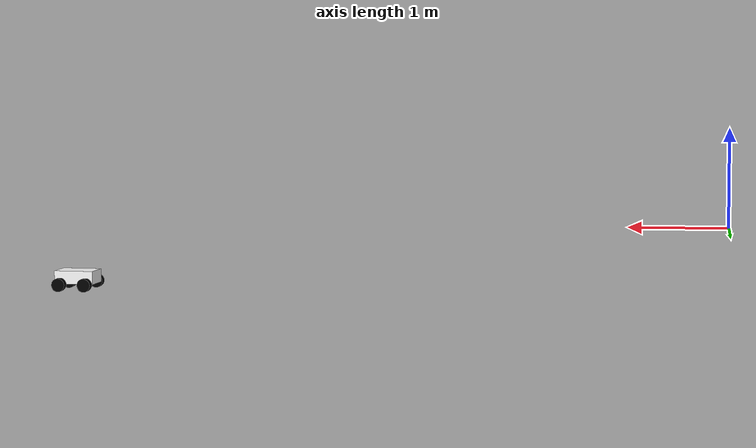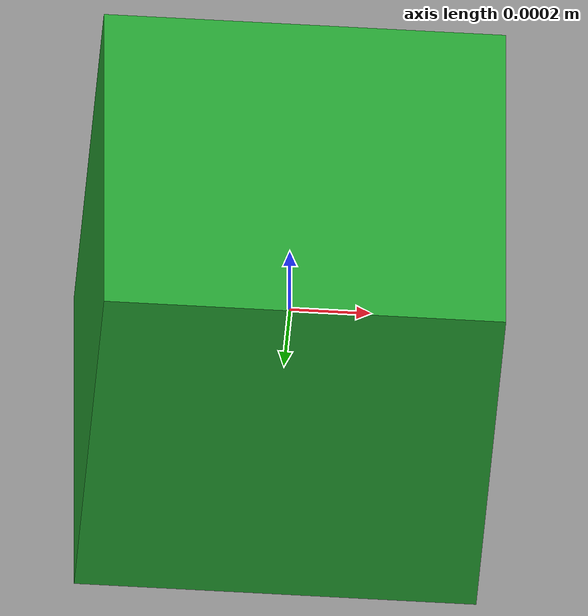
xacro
<?xml version="1.0"?>

<robot xmlns:xacro="http://www.ros.org/wiki/xacro"
    xmlns:sensor="http://playerstage.sourceforge.net/gazebo/xmlschema/#sensor"
        xmlns:controller="http://playerstage.sourceforge.net/gazebo/xmlschema/#controller"
        xmlns:interface="http://playerstage.sourceforge.net/gazebo/xmlschema/#interface"
    name="robot1_xacro">

    <xacro:property name="length_wheel" value="0.05" />
    <xacro:property name="radius_wheel" value="0.05" />
    <xacro:macro name="default_inertial" params="mass">
               <inertial>
                       <mass value="${mass}" />
                       <inertia ixx="1.0" ixy="0.0" ixz="0.0"
                                iyy="1.0" iyz="0.0"
                                izz="1.0" />
               </inertial>
    </xacro:macro>

    <link name="base_footprint">
        <visual>
            <geometry>
                    <box size="0.001 0.001 0.001"/>
                </geometry>
            <origin rpy="0 0 0" xyz="0 0 0"/>
        </visual>
        <xacro:default_inertial mass="0.0001"/>
    </link>

    <gazebo reference="base_footprint">
        <material>Gazebo/Green</material>
        <turnGravityOff>false</turnGravityOff>
    </gazebo>

    <joint name="base_footprint_joint" type="fixed">
        <origin xyz="0 0 0" />
        <parent link="base_footprint" />
        <child link="base_link" />
    </joint>

    <link name="base_link">
        <visual>
            <geometry>
                    <box size="0.2 .3 .1"/>
                </geometry>
            <origin rpy="0 0 1.54" xyz="5 5 0.05"/>
            <material name="white">
                <color rgba="1 1 1 1"/>
            </material>
        </visual>
        <collision>
            <geometry>
                    <box size="0.2 .3 0.1"/>
            </geometry>
        </collision>
        <xacro:default_inertial mass="10"/>
    </link>

    <link name="wheel_1">
        <visual>
                <geometry>
                    <cylinder length="${length_wheel}" radius="${radius_wheel}"/>
                </geometry>
            <origin rpy="0 0 0" xyz="0 0 0"/>
            <material name="black">
                <color rgba="0 0 0 1"/>
            </material>
        </visual>
        <collision>
            <geometry>
                    <cylinder length="${length_wheel}" radius="${radius_wheel}"/>
            </geometry>
        </collision>
        <xacro:default_inertial mass="1"/>
    </link>

    <link name="wheel_2">
        <visual>
                <geometry>
                    <cylinder length="${length_wheel}" radius="${radius_wheel}"/>
                </geometry>
            <origin rpy="0 0 0" xyz="0 0 0"/>
            <material name="black"/>
        </visual>
        <collision>
            <geometry>
                    <cylinder length="${length_wheel}" radius="${radius_wheel}"/>
            </geometry>
        </collision>
        <xacro:default_inertial mass="1"/>

    </link>

    <link name="wheel_3">
        <visual>
                <geometry>
                    <cylinder length="${length_wheel}" radius="${radius_wheel}"/>
                </geometry>

            <origin rpy="0 0 0" xyz="0 0 0"/>
            <material name="black"/>
        </visual>
        <collision>
            <geometry>
                    <cylinder length="${length_wheel}" radius="${radius_wheel}"/>
            </geometry>
        </collision>
        <xacro:default_inertial mass="1"/>
    </link>

    <link name="wheel_4">
        <visual>
                <geometry>
                    <cylinder length="${length_wheel}" radius="${radius_wheel}"/>
                </geometry>
            <origin rpy="0 0 0" xyz="0 0 0" />
            <material name="black"/>
        </visual>
        <collision>
            <geometry>
                    <cylinder length="${length_wheel}" radius="${radius_wheel}"/>
            </geometry>
        </collision>
        <xacro:default_inertial mass="1"/>

    </link>

 <joint name="base_to_wheel1" type="continuous">
   <parent link="base_link"/>
   <child link="wheel_1"/>
   <origin rpy="1.5707 0 0" xyz="5.1 5.15 0"/>
   <axis xyz="0 0 1" />
 </joint>

 <joint name="base_to_wheel2" type="continuous">
   <axis xyz="0 0 1" />
   <anchor xyz="0 0 0" />
   <limit effort="100" velocity="100" />
   <parent link="base_link"/>
   <child link="wheel_2"/>
   <origin rpy="1.5707 0 0" xyz="4.9 5.15 0"/>
</joint>

 <joint name="base_to_wheel3" type="continuous">
   <parent link="base_link"/>
   <axis xyz="0 0 1" />
   <child link="wheel_3"/>
   <origin rpy="1.5707 0 0" xyz="5.1 4.9 0"/>
 </joint>

 <joint name="base_to_wheel4" type="continuous">
   <parent link="base_link"/>
   <axis xyz="0 0 1" />
   <child link="wheel_4"/>
   <origin rpy="1.5707 0 0" xyz="4.9 4.85 0"/>
 </joint>

  <!-- Drive controller -->
<gazebo>
  <plugin name="skid_steer_drive_controller" filename="libgazebo_ros_skid_steer_drive.so">
    <updateRate>100.0</updateRate>
    <robotNamespace>/</robotNamespace>
    <leftFrontJoint>base_to_wheel1</leftFrontJoint>
    <rightFrontJoint>base_to_wheel3</rightFrontJoint>
    <leftRearJoint>base_to_wheel2</leftRearJoint>
    <rightRearJoint>base_to_wheel4</rightRearJoint>
    <wheelSeparation>4</wheelSeparation>
    <wheelDiameter>0.1</wheelDiameter>
    <robotBaseFrame>base_link</robotBaseFrame>
    <torque>1</torque>
    <commandTopic>mybot/cmd_vel</commandTopic>
    <broadcastTF>1</broadcastTF>
    <odometryTopic>odom</odometryTopic>
    <odometryFrame>odom</odometryFrame>
    <odometrySource>world</odometrySource>
    <publishOdomTF>true</publishOdomTF>
    <robotBaseFrame>base_footprint</robotBaseFrame>
    <legacyModeNS>false</legacyModeNS>
  </plugin>
</gazebo>
</robot>
